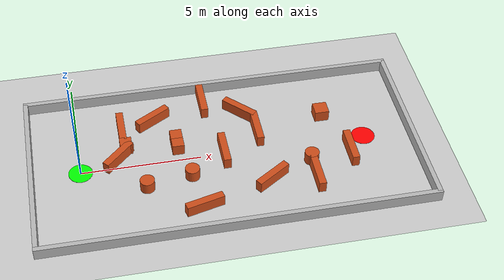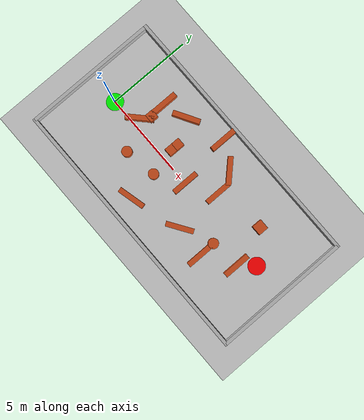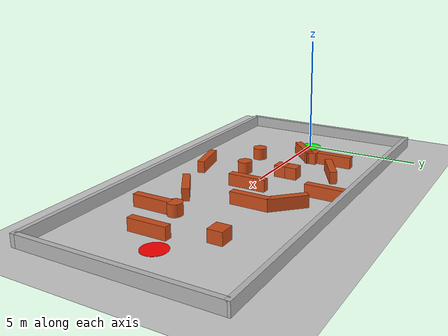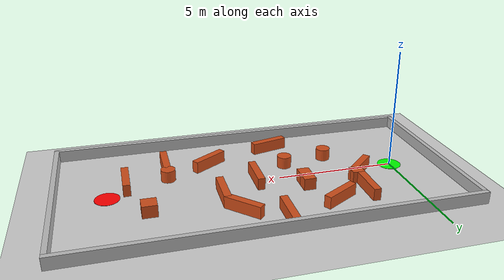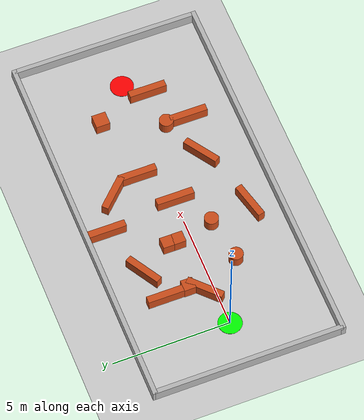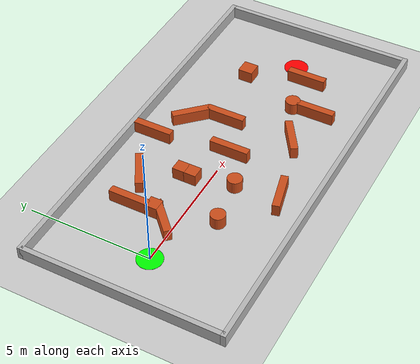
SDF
<sdf version="1.7">
 <world name="ab_world">
  <physics type="ode">
   <max_step_size>0.004</max_step_size>
   <real_time_factor>1</real_time_factor>
   <real_time_update_rate>250</real_time_update_rate>
  </physics>
  <light name="sun" type="directional">
   <pose>0 0 10 0 -0 0</pose>
   <diffuse>0.8 0.8 0.8 1</diffuse>
   <specular>0.2 0.2 0.2 1</specular>
   <attenuation>
    <range>1000</range>
    <constant>0.9</constant>
    <linear>0.01</linear>
    <quadratic>0.001</quadratic>
   </attenuation>
   <direction>-0.5 0.1 -0.9</direction>
   <spot><inner_angle>0</inner_angle><outer_angle>0</outer_angle><falloff>0</falloff></spot>
  </light>
  <model name="ground_plane">
   <static>1</static>
   <link name="link">
    <collision name="collision">
     <geometry><plane><normal>0 0 1</normal><size>100 100</size></plane></geometry>
     <surface><friction><ode><mu>100</mu><mu2>50</mu2></ode></friction></surface>
    </collision>
    <visual name="visual">
     <cast_shadows>0</cast_shadows>
     <geometry><plane><normal>0 0 1</normal><size>100 100</size></plane></geometry>
     <material>
      <script><uri>file://media/materials/scripts/gazebo.material</uri><name>Gazebo/Grey</name></script>
     </material>
    </visual>
   </link>
  </model>
  <spherical_coordinates>
   <surface_model>EARTH_WGS84</surface_model>
   <latitude_deg>55.75</latitude_deg>
   <longitude_deg>37.6</longitude_deg>
   <elevation>0</elevation>
   <heading_deg>0</heading_deg>
  </spherical_coordinates>
  <model name="zone_A">
   <static>1</static>
   <pose>0 0 0.005 0 -0 0</pose>
   <link name="l">
    <visual name="v">
     <geometry><cylinder><radius>0.5</radius><length>0.01</length></cylinder></geometry>
     <material><ambient>0 1 0 1</ambient><diffuse>0 1 0 1</diffuse></material>
    </visual>
   </link>
  </model>
  <model name="zone_B">
   <static>1</static>
   <pose>12 0 0.005 0 -0 0</pose>
   <link name="l">
    <visual name="v">
     <geometry><cylinder><radius>0.5</radius><length>0.01</length></cylinder></geometry>
     <material><ambient>1 0 0 1</ambient><diffuse>1 0 0 1</diffuse></material>
    </visual>
   </link>
  </model>
  <model name="wall_n">
   <static>1</static>
   <pose>6 4 0.25 0 -0 0</pose>
   <link name="l">
    <collision name="c"><geometry><box><size>16.2 0.2 0.5</size></box></geometry></collision>
    <visual name="v"><geometry><box><size>16.2 0.2 0.5</size></box></geometry></visual>
   </link>
  </model>
  <model name="wall_s">
   <static>1</static>
   <pose>6 -4 0.25 0 -0 0</pose>
   <link name="l">
    <collision name="c"><geometry><box><size>16.2 0.2 0.5</size></box></geometry></collision>
    <visual name="v"><geometry><box><size>16.2 0.2 0.5</size></box></geometry></visual>
   </link>
  </model>
  <model name="wall_w">
   <static>1</static>
   <pose>-2 0 0.25 0 -0 0</pose>
   <link name="l">
    <collision name="c"><geometry><box><size>0.2 8 0.5</size></box></geometry></collision>
    <visual name="v"><geometry><box><size>0.2 8 0.5</size></box></geometry></visual>
   </link>
  </model>
  <model name="wall_e">
   <static>1</static>
   <pose>14 0 0.25 0 -0 0</pose>
   <link name="l">
    <collision name="c"><geometry><box><size>0.2 8 0.5</size></box></geometry></collision>
    <visual name="v"><geometry><box><size>0.2 8 0.5</size></box></geometry></visual>
   </link>
  </model>
  <model name="box_1">
   <static>1</static>
   <pose>2 1 0.25 0 -0 0</pose>
   <link name="l">
    <collision name="c"><geometry><box><size>0.5 0.5 0.5</size></box></geometry></collision>
    <visual name="v">
     <geometry><box><size>0.5 0.5 0.5</size></box></geometry>
     <material><ambient>0.8 0.3 0.1 1</ambient><diffuse>0.8 0.3 0.1 1</diffuse></material>
    </visual>
   </link>
  </model>
  <model name="cyl_1">
   <static>1</static>
   <pose>4.5 -1 0.25 0 -0 0</pose>
   <link name="l">
    <collision name="c">
     <geometry><cylinder><radius>0.3</radius><length>0.5</length></cylinder></geometry>
    </collision>
    <visual name="v">
     <geometry><cylinder><radius>0.3</radius><length>0.5</length></cylinder></geometry>
     <material><ambient>0.8 0.3 0.1 1</ambient><diffuse>0.8 0.3 0.1 1</diffuse></material>
    </visual>
   </link>
  </model>
  <model name="wall_mid">
   <static>1</static>
   <pose>6 0 0.25 0 -0 0</pose>
   <link name="l">
    <collision name="c"><geometry><box><size>0.3 1.6 0.5</size></box></geometry></collision>
    <visual name="v">
     <geometry><box><size>0.3 1.6 0.5</size></box></geometry>
     <material><ambient>0.8 0.3 0.1 1</ambient><diffuse>0.8 0.3 0.1 1</diffuse></material>
    </visual>
   </link>
  </model>
  <model name="cyl_2">
   <static>1</static>
   <pose>9.5 -1 0.25 0 -0 0</pose>
   <link name="l">
    <collision name="c">
     <geometry><cylinder><radius>0.3</radius><length>0.5</length></cylinder></geometry>
    </collision>
    <visual name="v">
     <geometry><cylinder><radius>0.3</radius><length>0.5</length></cylinder></geometry>
     <material><ambient>0.8 0.3 0.1 1</ambient><diffuse>0.8 0.3 0.1 1</diffuse></material>
    </visual>
   </link>
  </model>
  <model name="box_2">
   <static>1</static>
   <pose>10.5 1.5 0.25 0 -0 0</pose>
   <link name="l">
    <collision name="c"><geometry><box><size>0.6 0.6 0.5</size></box></geometry></collision>
    <visual name="v">
     <geometry><box><size>0.6 0.6 0.5</size></box></geometry>
     <material><ambient>0.8 0.3 0.1 1</ambient><diffuse>0.8 0.3 0.1 1</diffuse></material>
    </visual>
   </link>
  </model>
  <gravity>0 0 -9.8</gravity>
  <magnetic_field>6e-06 2.3e-05 -4.2e-05</magnetic_field>
  <atmosphere type="adiabatic"/>
  <scene><ambient>0.4 0.4 0.4 1</ambient><background>0.7 0.7 0.7 1</background><shadows>1</shadows></scene>
  <audio><device>default</device></audio>
  <model name="box_1_clone">
   <static>1</static>
   <pose>4.13094 1.06335 0.25 0 -0 0</pose>
   <link name="l">
    <collision name="c"><geometry><box><size>0.5 0.5 0.5</size></box></geometry></collision>
    <visual name="v">
     <geometry><box><size>0.5 0.5 0.5</size></box></geometry>
     <material><ambient>0.8 0.3 0.1 1</ambient><diffuse>0.8 0.3 0.1 1</diffuse></material>
    </visual>
   </link>
  </model>
  <model name="wall_mid_clone">
   <static>1</static>
   <pose>1.62865 0.426904 0.25 0 0 -0.804355</pose>
   <link name="l">
    <collision name="c"><geometry><box><size>0.3 1.6 0.5</size></box></geometry></collision>
    <visual name="v">
     <geometry><box><size>0.3 1.6 0.5</size></box></geometry>
     <material><ambient>0.8 0.3 0.1 1</ambient><diffuse>0.8 0.3 0.1 1</diffuse></material>
    </visual>
   </link>
  </model>
  <model name="wall_mid_clone_clone">
   <static>1</static>
   <pose>7.08546 2.26641 0.25 0 0 -2.36657</pose>
   <link name="l">
    <collision name="c"><geometry><box><size>0.3 1.6 0.5</size></box></geometry></collision>
    <visual name="v">
     <geometry><box><size>0.3 1.6 0.5</size></box></geometry>
     <material><ambient>0.8 0.3 0.1 1</ambient><diffuse>0.8 0.3 0.1 1</diffuse></material>
    </visual>
   </link>
  </model>
  <model name="wall_mid_clone_0">
   <static>1</static>
   <pose>5.57267 3.11397 0.25 0 -0 0</pose>
   <link name="l">
    <collision name="c"><geometry><box><size>0.3 1.6 0.5</size></box></geometry></collision>
    <visual name="v">
     <geometry><box><size>0.3 1.6 0.5</size></box></geometry>
     <material><ambient>0.8 0.3 0.1 1</ambient><diffuse>0.8 0.3 0.1 1</diffuse></material>
    </visual>
   </link>
  </model>
  <model name="wall_mid_clone_1">
   <static>1</static>
   <pose>7.59628 1.00346 0.25 0 -0 0</pose>
   <link name="l">
    <collision name="c"><geometry><box><size>0.3 1.6 0.5</size></box></geometry></collision>
    <visual name="v">
     <geometry><box><size>0.3 1.6 0.5</size></box></geometry>
     <material><ambient>0.8 0.3 0.1 1</ambient><diffuse>0.8 0.3 0.1 1</diffuse></material>
    </visual>
   </link>
  </model>
  <model name="box_1_clone_clone">
   <static>1</static>
   <pose>4.13074 0.587632 0.25 0 -0 0</pose>
   <link name="l">
    <collision name="c"><geometry><box><size>0.5 0.5 0.5</size></box></geometry></collision>
    <visual name="v">
     <geometry><box><size>0.5 0.5 0.5</size></box></geometry>
     <material><ambient>0.8 0.3 0.1 1</ambient><diffuse>0.8 0.3 0.1 1</diffuse></material>
    </visual>
   </link>
  </model>
  <model name="wall_mid_clone_0_clone">
   <static>1</static>
   <pose>1.91912 1.97624 0.25 0 -0 0</pose>
   <link name="l">
    <collision name="c"><geometry><box><size>0.3 1.6 0.5</size></box></geometry></collision>
    <visual name="v">
     <geometry><box><size>0.3 1.6 0.5</size></box></geometry>
     <material><ambient>0.8 0.3 0.1 1</ambient><diffuse>0.8 0.3 0.1 1</diffuse></material>
    </visual>
   </link>
  </model>
  <model name="wall_mid_clone_0_clone_clone">
   <static>1</static>
   <pose>3.30191 2.40398 0.25 0 0 -1.03899</pose>
   <link name="l">
    <collision name="c"><geometry><box><size>0.3 1.6 0.5</size></box></geometry></collision>
    <visual name="v">
     <geometry><box><size>0.3 1.6 0.5</size></box></geometry>
     <material><ambient>0.8 0.3 0.1 1</ambient><diffuse>0.8 0.3 0.1 1</diffuse></material>
    </visual>
   </link>
  </model>
  <model name="cyl_1_clone">
   <static>1</static>
   <pose>2.60829 -1.30466 0.25 0 -0 0</pose>
   <link name="l">
    <collision name="c">
     <geometry><cylinder><radius>0.3</radius><length>0.5</length></cylinder></geometry>
    </collision>
    <visual name="v">
     <geometry><cylinder><radius>0.3</radius><length>0.5</length></cylinder></geometry>
     <material><ambient>0.8 0.3 0.1 1</ambient><diffuse>0.8 0.3 0.1 1</diffuse></material>
    </visual>
   </link>
  </model>
  <model name="wall_mid_clone_2">
   <static>1</static>
   <pose>9.51 -1.97335 0.25 0 -0 0</pose>
   <link name="l">
    <collision name="c"><geometry><box><size>0.3 1.6 0.5</size></box></geometry></collision>
    <visual name="v">
     <geometry><box><size>0.3 1.6 0.5</size></box></geometry>
     <material><ambient>0.8 0.3 0.1 1</ambient><diffuse>0.8 0.3 0.1 1</diffuse></material>
    </visual>
   </link>
  </model>
  <model name="wall_mid_clone_3">
   <static>1</static>
   <pose>7.65181 -1.81876 0.25 0 0 -0.989842</pose>
   <link name="l">
    <collision name="c"><geometry><box><size>0.3 1.6 0.5</size></box></geometry></collision>
    <visual name="v">
     <geometry><box><size>0.3 1.6 0.5</size></box></geometry>
     <material><ambient>0.8 0.3 0.1 1</ambient><diffuse>0.8 0.3 0.1 1</diffuse></material>
    </visual>
   </link>
  </model>
  <model name="wall_mid_clone_4">
   <static>1</static>
   <pose>11.2248 -0.827094 0.25 0 -0 0</pose>
   <link name="l">
    <collision name="c"><geometry><box><size>0.3 1.6 0.5</size></box></geometry></collision>
    <visual name="v">
     <geometry><box><size>0.3 1.6 0.5</size></box></geometry>
     <material><ambient>0.8 0.3 0.1 1</ambient><diffuse>0.8 0.3 0.1 1</diffuse></material>
    </visual>
   </link>
  </model>
  <model name="wall_mid_clone_5">
   <static>1</static>
   <pose>4.7102 -2.76593 0.25 0 0 -1.32982</pose>
   <link name="l">
    <collision name="c"><geometry><box><size>0.3 1.6 0.5</size></box></geometry></collision>
    <visual name="v">
     <geometry><box><size>0.3 1.6 0.5</size></box></geometry>
     <material><ambient>0.8 0.3 0.1 1</ambient><diffuse>0.8 0.3 0.1 1</diffuse></material>
    </visual>
   </link>
  </model>
 </world>
</sdf>
